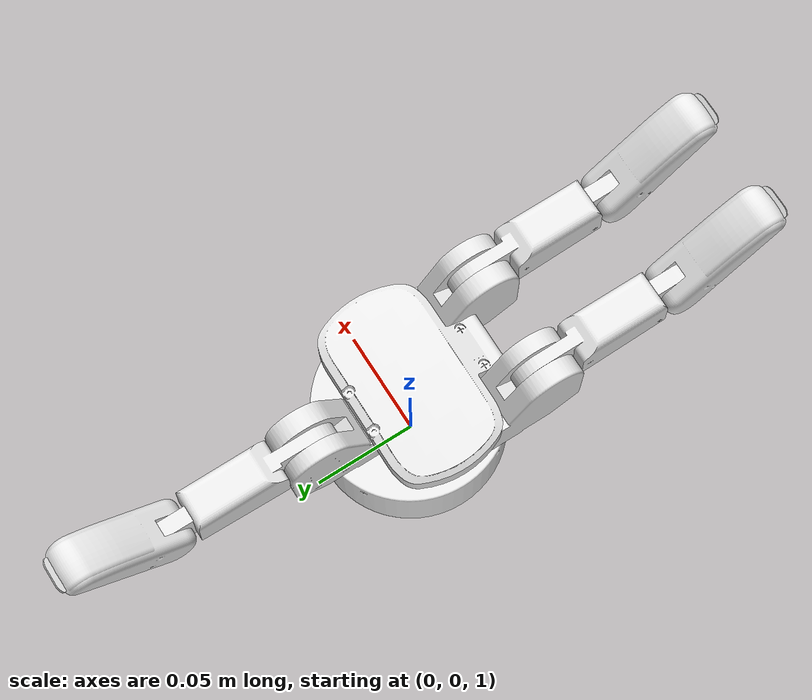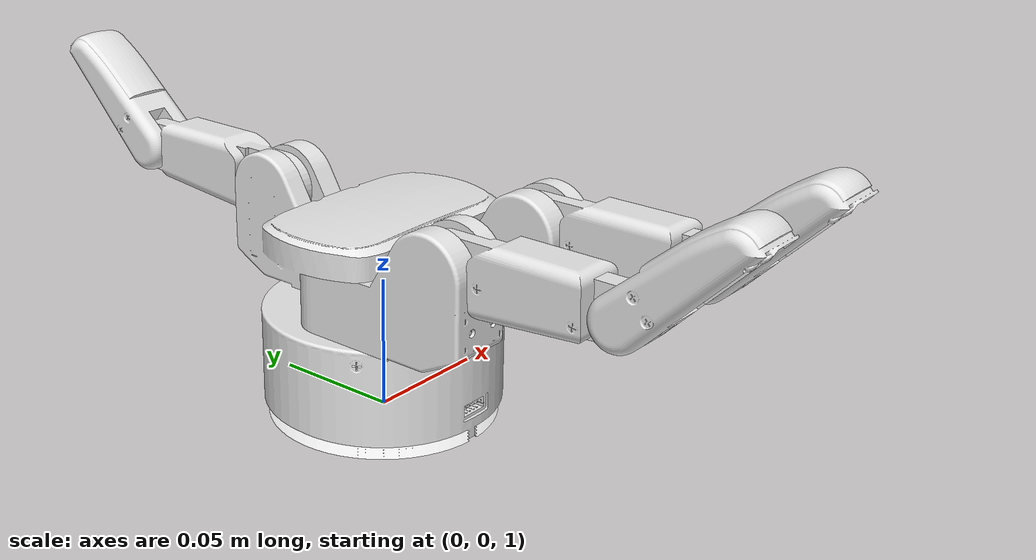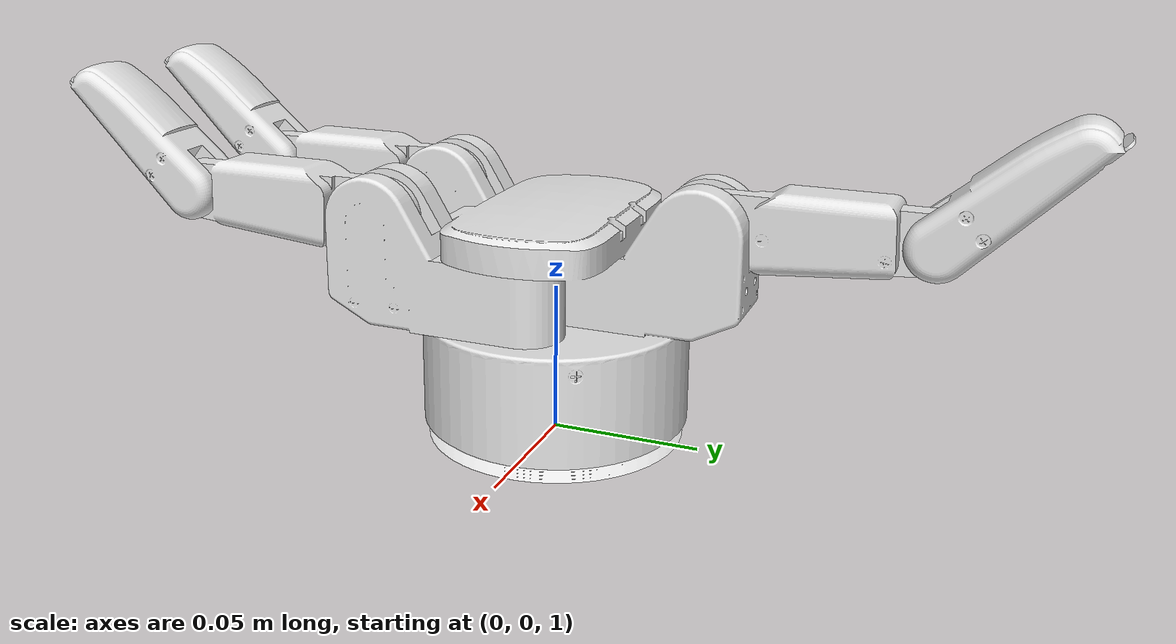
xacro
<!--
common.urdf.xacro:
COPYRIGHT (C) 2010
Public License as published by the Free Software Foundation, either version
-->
<?xml version="1.0"?>
<robot xmlns:xacro="http://www.ros.org/wiki/xacro" name="wam">

  <!-- Gazebo RTT Plugin -->
  <gazebo>
    <plugin name="rtt_gazebo" filename="librtt_gazebo_deployer.so">
      <component>
        <package>oro_barrett_sim</package>
        <type>oro_barrett_sim::BarrettSimManager</type>
        <name>barrett_manager</name>
      </component>
      <opsScriptFile>$(find oro_barrett_sim)/test/hand.ops</opsScriptFile>
    </plugin>
  </gazebo>

  <!-- Includea all the WAM stuff -->
  <xacro:include filename="$(find barrett_model)/models/wam_top.urdf.xacro"/>

  <!-- Root link is in the world frame-->
  <link name="world"/>

  <!-- Create a 7-DOF WAM arm -->
  <xacro:bhand prefix="hand" parent_link="world" xyz="0.0 0.0 1.0" rpy="0 0 0" />

</robot>

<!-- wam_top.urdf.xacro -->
<robot
  xmlns:xacro="http://www.ros.org/wiki/xacro"
  xmlns:controller="http://playerstage.sourceforge.net/gazebo/xmlschema/#controller">

  <!-- Some macros used by the WAM urdf -->
  <xacro:include filename="$(find barrett_model)/models/common.urdf.xacro"/>
  <!-- Definition of a single WAM arm -->
  <xacro:include filename="$(find barrett_model)/models/arm.urdf.xacro"/>
  <!-- Definition of all the different parts of a WAM arm -->
  <xacro:include filename="$(find barrett_model)/models/components.urdf.xacro"/>
  <!-- Definitions for the barrett hand -->
  <xacro:include filename="$(find barrett_model)/models/hand.urdf.xacro"/>
  <!-- Definitions for the barrett ball -->
  <xacro:include filename="$(find barrett_model)/models/ball.urdf.xacro"/>

  <!-- Materials -->
  <material name="WAMGrey">
    <color rgba="0.7 0.7 0.7 1.0"/>
  </material>

</robot>

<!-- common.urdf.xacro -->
<robot xmlns:xacro="http://ros.org/wiki/xacro">

  <!-- Directories -->
  <xacro:property name="models_path" value="package://barrett_model/models" />
  <xacro:property name="highResModelDirectory" value="${models_path}/meshes/splitModels" />

  <!-- Constants -->
  <xacro:property name="PI" value="3.1415926535897931" />

  <!-- Gazebo macros -->
  <xacro:macro name="gazebo_reference" params="name">
    <gazebo reference="${name}">
      <turnGravityOff>
        false
      </turnGravityOff>
      <selfCollide>
        true
      </selfCollide>
    </gazebo>
  </xacro:macro>

  <!-- Gazebo joint configuration -->
  <xacro:macro name="gz_joint">
    <provideFeedback>true</provideFeedback>
    <implicitSpringDamper>true</implicitSpringDamper>
  </xacro:macro>

</robot>

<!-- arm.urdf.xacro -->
<robot xmlns:xacro="http://www.ros.org/wiki/xacro">

  <xacro:include filename="$(find barrett_model)/models/common.urdf.xacro"/>
  <xacro:include filename="$(find barrett_model)/models/components.urdf.xacro"/>

  <xacro:macro name="wam_7dof" params="prefix xyz rpy">
    <xacro:wam prefix="${prefix}" xyz="${xyz}" rpy="${rpy}"/>
    <xacro:wam_wrist prefix="${prefix}"/>
    <xacro:wam_wrist_palm_stump prefix="${prefix}"/>
  </xacro:macro>

  <xacro:macro name="wam_4dof" params="prefix parent_link xyz rpy">
    <xacro:wam prefix="${prefix}" parent_link="${parent_link}" xyz="${xyz}" rpy="${rpy}"/>
    <xacro:wam_stump prefix="${prefix}"/>
  </xacro:macro>

  <!-- upper arm only -->
  <xacro:macro name="wam" params="prefix xyz rpy">
    <xacro:wam_shoulder_yaw prefix="${prefix}"/>
    <xacro:wam_shoulder_pitch prefix="${prefix}"/>
    <xacro:wam_upper_arm prefix="${prefix}"/>
  </xacro:macro>

  <!-- forearm with actuation "wrist" -->
  <xacro:macro name="wam_wrist" params="prefix">
    <xacro:wam_forearm prefix="${prefix}"/>
    <xacro:wam_wrist_yaw prefix="${prefix}"/>
    <xacro:wam_wrist_pitch prefix="${prefix}"/>
    <xacro:wam_palm prefix="${prefix}"/>
  </xacro:macro>

</robot>

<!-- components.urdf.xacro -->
<robot xmlns:xacro="http://ros.org/wiki/xacro">

  <xacro:include filename="$(find barrett_model)/models/hand.urdf.xacro"/>
  <xacro:include filename="$(find barrett_model)/models/common.urdf.xacro"/>
  <xacro:property name="b" value="0.5"/>

  <xacro:macro name="wam_shoulder_yaw" params="prefix">
    <link name = "${prefix}/base_link">
      <inertial>
        <origin xyz="0 0 0" />
        <mass value="1" />
        <inertia
          ixx="0.1" ixy="0"   ixz="0"
                  iyy="0.1"   iyz="0"
                            izz="0.1" />
      </inertial>
      <visual>
        <material name="WAMGrey">
          <color rgba="0.7 0.7 0.7 0.0"/>
        </material>
        <geometry>
          <mesh filename="${models_path}/sw_meshes/base_link_fine.stl"/>
        </geometry>
      </visual>
      <collision>
        <geometry>
          <mesh filename="${models_path}/sw_meshes/base_link_convex.dae"/>
        </geometry>
      </collision>
    </link>
    <joint name="${prefix}/base_yaw_joint" type="revolute">
      <parent link="${prefix}/base_link"/>
      <child link="${prefix}/shoulder_yaw_link"/>
      <origin xyz="0 0 0.346" rpy="0 0 0"/>
      <axis xyz="0 0 1"/>
      <limit effort="60" lower="-2.6" upper="2.6" velocity="2.0"/>
      <dynamics damping="${1.8*b}" friction="0"/>
    </joint>
    <gazebo reference="${prefix}/base_yaw_joint">
      <xacro:gz_joint/>
    </gazebo>

    <link name="${prefix}/shoulder_yaw_link" >
      <inertial>
        <origin xyz="-.00443422 -.00066489 -0.1289039 " />
        <mass value="5.0" />
        <inertia
          ixx=".13488033"  ixy="-0.00012485"   ixz="0.00213041"
                           iyy=".09046330"    iyz="-.00068555"
                                              izz=".11328369" />
      </inertial>
      <visual>
        <material name="WAMGrey">
          <color rgba="0.7 0.7 0.7 1.0"/>
        </material>
        <geometry>
          <mesh filename="${models_path}/sw_meshes/shoulder_link_fine.stl"/>
        </geometry>
      </visual>
      <collision>
        <geometry>
          <mesh filename="${models_path}/sw_meshes/shoulder_link_convex_decomposition.dae"/>
        </geometry>
      </collision>
    </link>
  </xacro:macro>

  <xacro:macro name="wam_shoulder_pitch" params="prefix">
    <joint name="${prefix}/shoulder_pitch_joint" type="revolute">
      <parent link="${prefix}/shoulder_yaw_link"/>
      <child link="${prefix}/shoulder_pitch_link"/>
      <origin xyz="0 0 0" rpy="${-PI/2} 0 0"/>
      <axis xyz="0 0 1"/>
      <limit effort="60" lower="-1.985" upper="1.985" velocity="2.0"/>
      <dynamics damping="${0.5*b}" friction="0"/>
    </joint>
    <gazebo reference="${prefix}/shoulder_pitch_joint">
      <xacro:gz_joint/>
    </gazebo>

    <link name="${prefix}/shoulder_pitch_link" >
      <visual>
        <material name="WAMGrey">
          <color rgba="0.7 0.7 0.7 1.0"/>
        </material>
        <geometry>
          <mesh filename="${models_path}/sw_meshes/shoulder_pitch_link_fine.stl"/>
        </geometry>
      </visual>
      <inertial>
        <origin xyz="-.00236981 -.01542114 .03105614 " />
        <mass value="3.87493756" />
        <inertia
          ixx="0.02140958"  ixy="-0.00002461"  ixz="0.00027172"
                            iyy="0.015589060"  iyz="0.0018192"
                                               izz="0.01377875" />
      </inertial>
      <collision>
        <geometry>
          <mesh filename="${models_path}/sw_meshes/shoulder_pitch_link_convex.dae"/>
        </geometry>
      </collision>
    </link>
  </xacro:macro>

  <xacro:macro name="wam_upper_arm" params="prefix">
    <joint name="${prefix}/shoulder_yaw_joint" type="revolute">
      <parent link="${prefix}/shoulder_pitch_link"/>
      <child link="${prefix}/upper_arm_link"/>
      <origin xyz="0 0 0" rpy="${PI/2} 0 0"/>
      <axis xyz="0 0 1"/>
      <limit effort="45" lower="-2.8" upper="2.8" velocity="2.0"/>
      <dynamics damping="${1.5*b}" friction="0"/>
    </joint>
    <gazebo reference="${prefix}/shoulder_yaw_joint">
      <xacro:gz_joint/>
    </gazebo>

    <link name="${prefix}/upper_arm_link" >
      <inertial>
        <origin xyz="0.00683258580000000 0.000033090000000 0.392492300000000" />
        <mass value="2.20228141" />
        <inertia
          ixx=".05911077"  ixy="-0.00000738"  ixz="-0.00249612"
                           iyy="0.05927043"   iyz="0.00001767"
                                              izz="0.0032455" />
      </inertial>
      <visual>
        <material name="WAMGrey">
          <color rgba="0.7 0.7 0.7 1.0"/>
        </material>
        <geometry>
          <mesh filename="${models_path}/sw_meshes/upper_arm_link_fine.stl"/>
        </geometry>
      </visual>
      <collision>
        <geometry>
          <mesh filename="${models_path}/sw_meshes/upper_arm_link_convex_decomposition.dae"/>
        </geometry>
      </collision>
    </link>
  </xacro:macro>

  <!-- Forearm macros -->
  <xacro:macro name="wam_forearm" params="prefix">
    <joint name="${prefix}/elbow_pitch_joint" type="revolute">
      <parent link="${prefix}/upper_arm_link"/>
      <child link="${prefix}/forearm_link"/>
      <origin xyz="0.045 0 0.55" rpy="${-PI/2} 0 0"/>
      <axis xyz="0 0 1"/>
      <limit effort="30" lower="-0.9" upper="${PI}" velocity="2.00"/>
      <dynamics damping="${0.8*b}" friction="0"/>
    </joint>
    <gazebo reference="${prefix}/elbow_pitch_joint">
      <xacro:gz_joint/>
    </gazebo>
    <link name="${prefix}/forearm_link" >
      <inertial>
        <mass value="0.50016804" />
        <origin xyz="-0.04001488 -.14271662 -.00022942 " rpy="0 0 0" />
        <inertia
          ixx="0.01491672" ixy="0.001506040000000" ixz="0.000017410000000"
                           iyy="0.002944630000000" iyz="0.000021090000000"
                                                   izz="0.014829880000000" />
      </inertial>
      <visual>
        <material name="WAMGrey">
          <color rgba="0.7 0.7 0.7 1.0"/>
        </material>
        <geometry>
          <mesh filename="${models_path}/sw_meshes/elbow_link_fine.stl"/>
        </geometry>
      </visual>
      <collision>
        <geometry>
          <mesh filename="${models_path}/sw_meshes/elbow_link_convex.dae"/>
        </geometry>
      </collision>

      <visual>
        <material name="WAMGrey">
          <color rgba="0.7 0.7 0.7 1.0"/>
        </material>
        <origin xyz="-0.045 -0.0730 0" rpy="${PI/2} 0 0" />
        <geometry>
          <mesh filename="${models_path}/sw_meshes/forearm_link_fine.stl"/>
        </geometry>
      </visual>
      <collision>
        <origin xyz="-0.045 -0.0730 0" rpy="${PI/2} 0 0" />
        <geometry>
          <mesh filename="${models_path}/sw_meshes/forearm_link_convex_decomposition.dae"/>
        </geometry>
      </collision>
    </link>
  </xacro:macro>

  <xacro:macro name="wam_wrist_yaw" params="prefix">
    <joint name="${prefix}/wrist_yaw_joint" type="revolute">
      <parent link="${prefix}/forearm_link"/>
      <child link="${prefix}/wrist_yaw_link"/>
      <origin xyz="-0.045 -0.3 0" rpy="${PI/2} 0 0"/>
      <axis xyz="0 0 1"/>
      <limit effort="10" lower="-4.55" upper="1.25" velocity="2.0"/>
      <dynamics damping="${0.5*b}" friction="0"/>
    </joint>
    <gazebo reference="${prefix}/wrist_yaw_joint">
      <xacro:gz_joint/>
    </gazebo>
    <link name="${prefix}/wrist_yaw_link" >
      <inertial>
        <origin xyz="0.00008921 0.00435824 -0.00511217 " />
        <mass value="1.05376019" />
        <inertia  ixx="0.00005029" ixy="0.00000020"  ixz="0.00007582"
          iyy="0.00007582"  iyz="-0.00000359"
          izz="0.00006270" />
      </inertial>
      <visual>
        <material name="WAMGrey">
          <color rgba="0.7 0.7 0.7 1.0"/>
        </material>
        <origin xyz="0 0 0" rpy="0 0 0" />
        <geometry>
          <mesh filename="${models_path}/sw_meshes/wrist_yaw_link_fine.stl"/>
        </geometry>
      </visual>
      <collision>
        <origin xyz="0 0 0" rpy="0 0 0" />
        <geometry>
          <mesh filename="${models_path}/sw_meshes/wrist_yaw_link_convex_decomposition.dae"/>
        </geometry>
      </collision>
    </link>
  </xacro:macro>

  <xacro:macro name="wam_wrist_pitch" params="prefix">
    <joint name="${prefix}/wrist_pitch_joint" type="revolute">
      <parent link="${prefix}/wrist_yaw_link"/>
      <child link="${prefix}/wrist_pitch_link"/>
      <origin xyz="0 0 0" rpy="${-PI/2} 0 0"/>
      <axis xyz="0 0 1"/>
      <limit effort="10" lower="-1.5707" upper="1.5707" velocity="2.00"/>
      <dynamics damping="${0.1*b}" friction="0"/>
    </joint>
    <gazebo reference="${prefix}/wrist_pitch_joint">
      <xacro:gz_joint/>
    </gazebo>
    <link name="${prefix}/wrist_pitch_link" >
      <inertial>
        <origin xyz="-0.00012262 -0.02468336 -0.01703194 " rpy="0 0 0" />
        <mass value="0.51797364" />
        <inertia
          ixx="0.00055516"  ixy="0.00000061"  ixz="-0.00000074"
          iyy="0.00024367"  iyz="-0.00004590"
          izz="0.00045358" />
      </inertial>
      <visual>
        <material name="WAMGrey">
          <color rgba="0.7 0.7 0.7 1.0"/>
        </material>
        <geometry>
          <mesh filename="${models_path}/sw_meshes/wrist_pitch_link_fine.stl"/>
        </geometry>
      </visual>
      <collision>
        <geometry>
          <mesh filename="${models_path}/sw_meshes/wrist_pitch_link_convex_decomposition.dae"/>
        </geometry>
      </collision>
    </link>
  </xacro:macro>

  <!-- Palm without force-torque sensor -->
  <xacro:macro name="wam_palm" params="prefix">
    <joint name="${prefix}/palm_yaw_joint" type="revolute">
      <parent link="${prefix}/wrist_pitch_link"/>
      <child link="${prefix}/wrist_palm_link"/>
      <origin xyz="0 0 0" rpy="${PI/2} 0 0"/>
      <axis xyz="0 0 1"/>
      <limit effort="10" lower="-3.0" upper="3.0" velocity="2.00"/><!-- 2.95 is a limit taken in from 3 due to saftey and differences between arms. -->
      <dynamics damping="${0.1*b}" friction="0"/>
    </joint>
    <gazebo reference="${prefix}/palm_yaw_joint">
      <xacro:gz_joint/>
    </gazebo>
    <link name="${prefix}/wrist_palm_link" >
      <inertial>
        <origin xyz="0.0 0.0 0.055" rpy="0 0 0" />
        <mass value="0.08286134" />
        <inertia  ixx="0.00010859" ixy="0.00000000"  ixz="-0.00000000"
          iyy="0.00020683"  iyz="-0.0000000"
          izz="0.00010851" />
      </inertial>
      <visual>
        <material name="WAMGrey">
          <color rgba="0.7 0.7 0.7 1.0"/>
        </material>
        <origin xyz="0 0 0" rpy="0 0 0" />
        <geometry>
          <mesh filename="${models_path}/sw_meshes/wrist_palm_link_fine.stl"/>
        </geometry>
      </visual>
      <collision>
        <origin xyz="0 0 0" rpy="0 0 0" />
        <geometry>
          <mesh filename="${models_path}/sw_meshes/wrist_palm_link_convex.dae"/>
        </geometry>
      </collision>
    </link>
  </xacro:macro>

  <xacro:macro name="wam_wrist_palm_stump" params="prefix">
    <joint name="${prefix}/wrist_palm_stump_joint" type="fixed">
      <parent link="${prefix}/wrist_palm_link"/>
      <child link="${prefix}/wrist_palm_stump_link"/>
      <origin xyz="0 0 0.06" rpy="0 0 0"/>
    </joint>
    <link name="${prefix}/wrist_palm_stump_link" >
      <inertial>
        <mass value="0.000001" />
        <inertia
          ixx="0.0000001" ixy="0.0" ixz="0.0"
          iyy="0.0000001" iyz="0.0"
          izz="0.0000001" />
      </inertial>
    </link>
  </xacro:macro>

  <!-- Hollow forearm macros -->
          <!--iyy="0.01482988"   iyz="-0.00002109"-->

          <!--iyy="0.00007582"  iyz="-0.00000359"-->

  <!-- Palm with ForceTorque macros -->
          <!--iyy="0.00020683"  iyz="-0.0000000"-->

  <xacro:macro name="wam_stump" params="prefix">
    <joint name="${prefix}/elbow_pitch_joint" type="revolute">
      <parent link="${prefix}/upper_arm_link"/>
      <child link="${prefix}/stump_link"/>
      <origin xyz="0.045 0 0.55" rpy="${-PI/2} 0 0"/>
      <axis xyz="0 0 1"/>
      <limit effort="15" lower="-0.9" upper="${PI}" velocity="2.0"/>
      <dynamics damping="${0.1*b}" friction="0"/>
    </joint>
    <link name="${prefix}/stump_link" >
      <inertial>
        <mass value="0.408" />
        <origin xyz="-0.0195 -.02566 -.00022942 " rpy="0 0 0" />
        <inertia
          ixx="0.01491672" ixy="0.001506040000000" ixz="0.000017410000000"
                           iyy="0.002944630000000" iyz="0.000021090000000"
                                                   izz="0.014829880000000" />
      </inertial>
      <visual>
        <material name="WAMGrey">
          <color rgba="0.7 0.7 0.7 1.0"/>
        </material>
        <geometry>
          <mesh filename="${models_path}/sw_meshes/elbow_link_fine.stl"/>
        </geometry>
      </visual>
      <collision>
        <geometry>
          <mesh filename="${models_path}/sw_meshes/elbow_link_convex.dae"/>
        </geometry>
      </collision>
    </link>
  </xacro:macro>
</robot>

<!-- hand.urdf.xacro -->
<robot xmlns:xacro="http://www.ros.org/wiki/xacro">

  <xacro:include filename="$(find barrett_model)/models/common.urdf.xacro"/>
  <xacro:property name="b" value="1.1"/>

  <!-- High-leveel hand macro -->
  <xacro:macro name="bhand" params="parent_link prefix xyz rpy">
    <xacro:bhand_palm parent_link="${parent_link}" prefix="${prefix}" xyz="${xyz}" rpy="${rpy}"/>
    <xacro:bhand_finger_1 prefix="${prefix}"/>
    <xacro:bhand_finger_2 prefix="${prefix}"/>
    <xacro:bhand_finger_3 prefix="${prefix}"/>
  </xacro:macro>

  <!-- Fingers -->
  <xacro:macro name="bhand_finger_1" params="prefix">
    <xacro:bhand_finger_prox prefix="${prefix}/finger_1" parent_link="${prefix}/bhand_palm_link" xyz="-0.025 0.0 0.0415" rpy="0 0 -${PI/2}" axis="0 0 -1"/>
    <xacro:bhand_finger_med prefix="${prefix}/finger_1" parent_link="${prefix}/finger_1/prox_link" xyz="0.05 0.0 0.03390" rpy="${PI/2} 0 0"/>
    <xacro:bhand_finger_dist prefix="${prefix}/finger_1"/>
    <xacro:bhand_finger_tip prefix="${prefix}/finger_1"/>
  </xacro:macro>

  <xacro:macro name="bhand_finger_2" params="prefix">
    <xacro:bhand_finger_prox prefix="${prefix}/finger_2" parent_link="${prefix}/bhand_palm_link" xyz="0.025 0.0 0.0415" rpy="0 0 -${PI/2}" axis="0 0 1"/>
    <xacro:bhand_finger_med prefix="${prefix}/finger_2" parent_link="${prefix}/finger_2/prox_link" xyz="0.05 0.0 0.03390" rpy="${PI/2} 0 0"/>
    <xacro:bhand_finger_dist prefix="${prefix}/finger_2"/>
    <xacro:bhand_finger_tip prefix="${prefix}/finger_2"/>
  </xacro:macro>

  <xacro:macro name="bhand_finger_3" params="prefix">
    <xacro:bhand_finger_med prefix="${prefix}/finger_3" parent_link="${prefix}/bhand_palm_link" xyz="0 0.05 0.0754" rpy="${PI/2} 0 ${PI/2}"/>
    <xacro:bhand_finger_dist prefix="${prefix}/finger_3"/>
    <xacro:bhand_finger_tip prefix="${prefix}/finger_3"/>
  </xacro:macro>

  <xacro:macro name="gz_hand_link" params="collide">
    <mu1>0.8</mu1>
    <mu2>0.8</mu2>
    <xacro:if value="${collide}">
      <selfCollide>true</selfCollide>
    </xacro:if>
  </xacro:macro>

  <!-- Components -->
  <xacro:macro name="bhand_palm" params="prefix parent_link xyz rpy">
    <joint name="${prefix}/bhand_base_joint" type="fixed">
      <parent link="${parent_link}"/>
      <child link="${prefix}/bhand_palm_link"/>
      <origin xyz="${xyz}" rpy="${rpy}"/>
    </joint>
    <gazebo reference="${prefix}/bhand_palm_link">
      <xacro:gz_hand_link collide="false"/>
    </gazebo>
    <link name="${prefix}/bhand_palm_link">
      <inertial>
        <origin xyz="-5.1098e-005 0.0050433 0.036671"/>
        <mass value="0.50573" />
        <inertia
          ixx="3.8374e-005" ixy="-5.604e-008"  ixz="-4.2034e-005"
                           iyy="0.00022405"   iyz="1.3283e-007"
                                              izz="0.00020045" />
      </inertial>
      <visual>
        <material name="WAMGrey">
          <color rgba="0.9 0.9 0.9 0.0"/>
        </material>
        <geometry>
          <mesh filename="${models_path}/sw_meshes/bhand/bhand_palm_fine.stl"/>
        </geometry>
      </visual>
      <collision>
        <geometry>
          <mesh filename="${models_path}/sw_meshes/bhand/bhand_palm_link_convex_decomposition.dae"/>
        </geometry>
      </collision>
    </link>

    <joint name="${prefix}/bhand_palm_surface_joint" type="fixed">
      <parent link="${prefix}/bhand_palm_link"/>
      <child link="${prefix}/bhand_palm_surface_link"/>
      <origin xyz="0 0 0.08" rpy="0 0 0"/>
      <limit effort="5" lower="0" upper="${PI}" velocity="5.0"/>
      <dynamics damping="${0.1*b}" friction="0"/>
    </joint>
    <link name="${prefix}/bhand_palm_surface_link">
      <inertial>
        <mass value="0.000001" />
        <inertia
          ixx="0.000001" ixy="0.0"  ixz="0.0"
          iyy="0.000001" iyz="0.0"
          izz="0.000001" />
      </inertial>
    </link>

    <joint name="${prefix}/bhand_grasp_joint" type="fixed">
      <parent link="${prefix}/bhand_palm_link"/>
      <child link="${prefix}/bhand_grasp_link"/>
      <origin xyz="0 0 0.12" rpy="0 0 0"/>
      <limit effort="5" lower="0" upper="${PI}" velocity="5.0"/>
      <dynamics damping="${0.1*b}" friction="0"/>
    </joint>
    <link name="${prefix}/bhand_grasp_link">
      <inertial>
        <mass value="0.000001" />
        <inertia
          ixx="0.000001" ixy="0.0"  ixz="0.0"
          iyy="0.000001" iyz="0.0"
          izz="0.000001" />
      </inertial>
    </link>
  </xacro:macro>

  <xacro:macro name="bhand_finger_prox" params="prefix parent_link xyz rpy axis">
    <joint name="${prefix}/prox_joint" type="revolute">
      <parent link="${parent_link}"/>
      <child link="${prefix}/prox_link"/>
      <origin xyz="${xyz}" rpy="${rpy}"/>
      <axis xyz="${axis}"/>
      <limit effort="5" lower="0" upper="${PI}" velocity="5.0"/>
      <dynamics damping="${0.1*b}" friction="0"/>
    </joint>
    <gazebo reference="${prefix}/prox_joint">
      <xacro:gz_joint/>
    </gazebo>
    <gazebo reference="${prefix}/prox_link">
      <xacro:gz_hand_link collide="false"/>
    </gazebo>
    <link name="${prefix}/prox_link">
      <inertial>
        <origin xyz="0.023133 0.00078642 0.00052792" />
        <mass value="0.14109" />
        <inertia
          ixx="4.872e-006" ixy="1.7103e-006"  ixz="3.4041e-008"
                           iyy="7.6588e-005"  iyz="2.3133e-008"
                                              izz="7.7733e-005" />
      </inertial>
      <visual>
        <material name="WAMGrey">
          <color rgba="0.9 0.9 0.9 0.0"/>
        </material>
        <geometry>
          <mesh filename="${models_path}/sw_meshes/bhand/bhand_finger_prox_link_fine.stl"/>
        </geometry>
      </visual>
      <collision>
        <geometry>
          <mesh filename="${models_path}/sw_meshes/bhand/bhand_finger_prox_link_convex_decomposition.dae"/>
        </geometry>
      </collision>
    </link>
  </xacro:macro>

  <xacro:macro name="bhand_finger_med" params="prefix parent_link xyz rpy">
    <joint name="${prefix}/med_joint" type="revolute">
      <parent link="${parent_link}"/>
      <child link="${prefix}/med_link"/>
      <origin xyz="${xyz}" rpy="${rpy}"/>
      <axis xyz="0 0 1"/>
      <limit effort="5" lower="0" upper="${140/180*PI}" velocity="5.00"/>
      <dynamics damping="${0.1*b}" friction="0"/>
    </joint>
    <gazebo reference="${prefix}/med_joint">
      <xacro:gz_joint/>
    </gazebo>
    <gazebo reference="${prefix}/med_link">
      <xacro:gz_hand_link collide="false"/>
    </gazebo>
    <link name="${prefix}/med_link">
      <inertial>
        <origin xyz="0.023133 0.00078642 0.00052792" />
        <mass value="0.062139" />
        <inertia
          ixx="4.872e-006" ixy="1.7103e-006"  ixz="3.4041e-008"
                           iyy="7.6588e-005"  iyz="2.3133e-008"
                                              izz="7.7733e-005" />
      </inertial>
      <visual>
        <material name="WAMGrey">
          <color rgba="0.9 0.9 0.9 0.0"/>
        </material>
        <geometry>
          <mesh filename="${models_path}/sw_meshes/bhand/bhand_finger_med_link_fine.stl"/>
        </geometry>
      </visual>
      <collision>
        <geometry>
          <mesh filename="${models_path}/sw_meshes/bhand/bhand_finger_med_link_convex.dae"/>
        </geometry>
      </collision>
    </link>
  </xacro:macro>

  <xacro:macro name="bhand_finger_dist" params="prefix">
    <joint name="${prefix}/dist_joint" type="revolute">
      <parent link="${prefix}/med_link"/>
      <child link="${prefix}/dist_link"/>
      <origin xyz="0.06994 0.003 0.0" rpy="0 0 ${PI/4}"/>
      <axis xyz="0 0 1"/>
      <limit effort="5" lower="0" upper="${48/180*PI}" velocity="5.00"/>
      <dynamics damping="${0.1*b}" friction="0"/>
    </joint>
    <gazebo reference="${prefix}/dist_joint">
      <xacro:gz_joint/>
    </gazebo>
    <gazebo reference="${prefix}/dist_link">
      <xacro:gz_hand_link collide="true"/>
    </gazebo>
    <link name="${prefix}/dist_link">
      <inertial>
        <origin xyz="0.022825 0.0010491 0.0004203" rpy="0 0 0"/>
        <mass value="0.041377" />
        <inertia
          ixx="3.1582e-006" ixy="1.4308e-006"  ixz="1.0106e-007"
                           iyy="3.8376e-005"   iyz="0"
                                              izz="3.7275e-005" />
      </inertial>
      <visual>
        <origin rpy="0 0 ${-PI/4}"/>
        <material name="WAMGrey">
          <color rgba="0.9 0.9 0.9 0.0"/>
        </material>
        <geometry>
          <mesh filename="${models_path}/sw_meshes/bhand/bhand_finger_dist_link_fine.stl"/>
        </geometry>
      </visual>
      <collision>
        <origin rpy="0 0 ${-PI/4}"/>
        <geometry>
          <mesh filename="${models_path}/sw_meshes/bhand/bhand_finger_dist_link_convex.dae"/>
        </geometry>
      </collision>
    </link>
  </xacro:macro>

  <xacro:macro name="bhand_finger_tip" params="prefix">
    <joint name="${prefix}/tip_joint" type="fixed">
      <parent link="${prefix}/dist_link"/>
      <child link="${prefix}/tip_link"/>
      <origin xyz="0.05 0.0 0.0" rpy="0 0 0"/>
    </joint>
    <link name="${prefix}/tip_link">
      <inertial>
        <mass value="1E-6" />
        <inertia
          ixx="1E-6" ixy="0"    ixz="0"
                     iyy="1E-6" iyz="0"
                                izz="1E-6" />
      </inertial>
    </link>
  </xacro:macro>

</robot>
